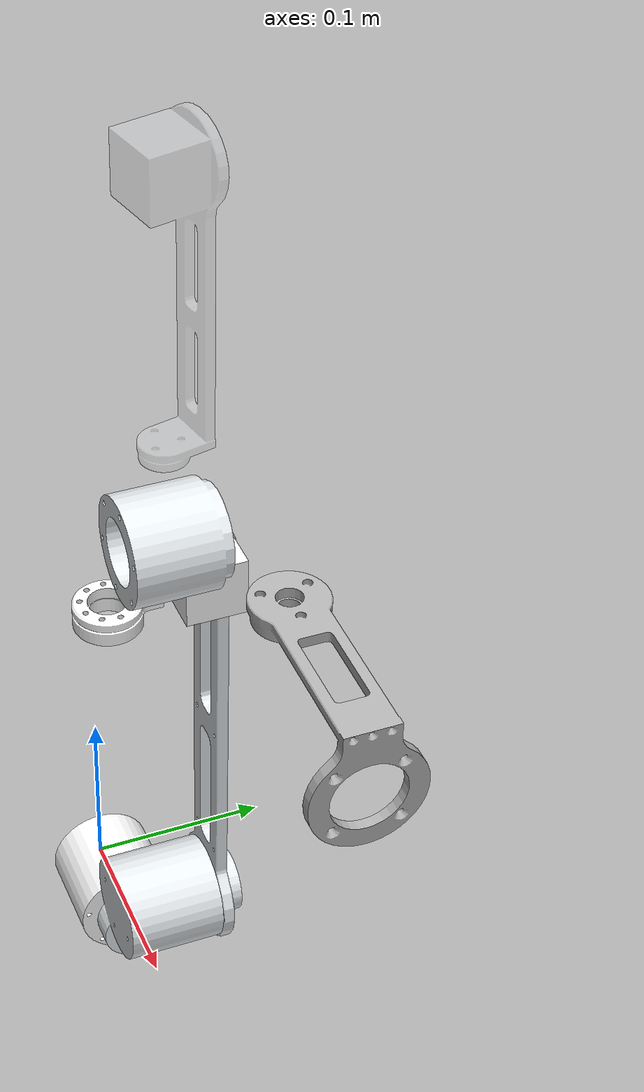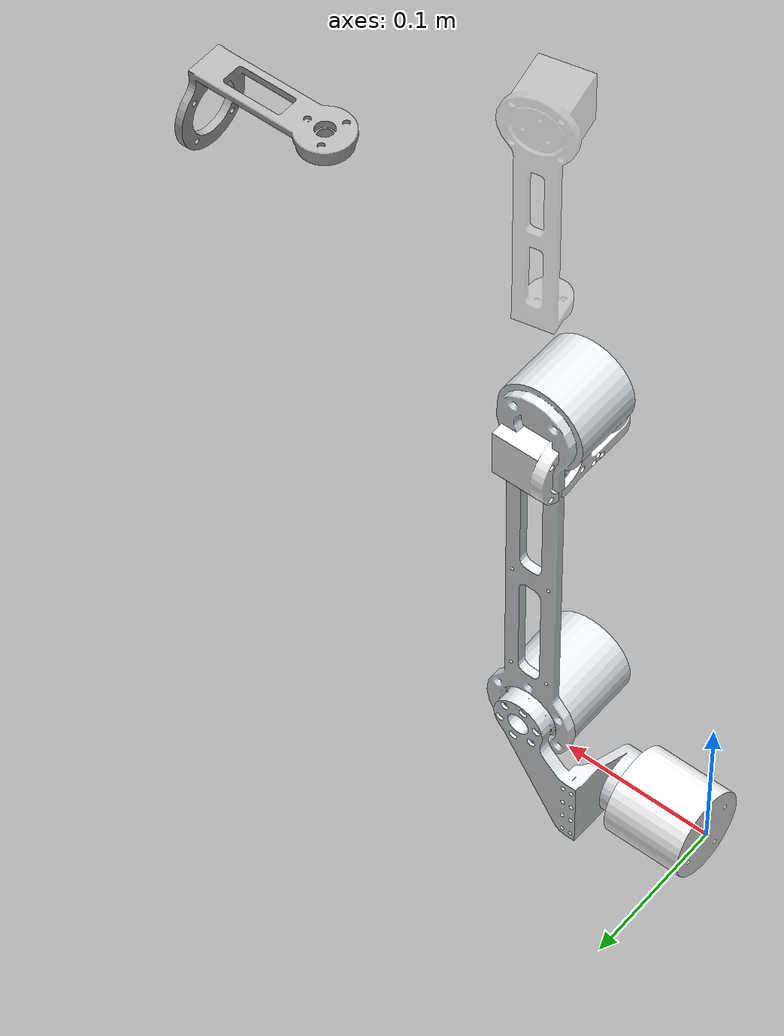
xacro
<?xml version="1.0" encoding="utf-8"?>
<robot xmlns:xacro="http://www.ros.org/wiki/xacro">

  <link
    name="base_link">
    <inertial>
      <origin
        xyz="0.025701 5.0471E-18 1.8724E-17"
        rpy="0 0 0" />
      <mass
        value="0.361" />
      <inertia
        ixx="0.00013128"
        ixy="-9.8948E-21"
        ixz="-1.4612E-21"
        iyy="0.0001261"
        iyz="8.4933E-21"
        izz="0.0001261" />
    </inertial>
    <visual>
      <origin
        xyz="0 0 0"
        rpy="0 0 0" />
      <geometry>
        <mesh
          filename="package://dummy_description/meshes/arm/A-L1-GAMMA/base_link.STL" />
      </geometry>
      <material
        name="">
        <color
          rgba="1 1 1 1" />
      </material>
    </visual>
    <collision>
      <origin
        xyz="0 0 0"
        rpy="0 0 0" />
      <geometry>
        <mesh
          filename="package://dummy_description/meshes/arm/A-L1-GAMMA/base_link.STL" />
      </geometry>
    </collision>
  </link>
  <link
    name="link1">
    <inertial>
      <origin
        xyz="0.03356 0.0084188 0.049178"
        rpy="0 0 0" />
      <mass
        value="0.471" />
      <inertia
        ixx="0.00017444"
        ixy="-1.9181E-06"
        ixz="-1.3887E-05"
        iyy="0.0001772"
        iyz="-3.8449E-06"
        izz="0.0001465" />
    </inertial>
    <visual>
      <origin
        xyz="0 0 0"
        rpy="0 0 0" />
      <geometry>
        <mesh
          filename="package://dummy_description/meshes/arm/A-L1-GAMMA/Link1.STL" />
      </geometry>
      <material
        name="">
        <color
          rgba="0.89804 0.91765 0.92941 1" />
      </material>
    </visual>
    <collision>
      <origin
        xyz="0 0 0"
        rpy="0 0 0" />
      <geometry>
        <mesh
          filename="package://dummy_description/meshes/arm/A-L1-GAMMA/Link1.STL" />
      </geometry>
    </collision>
  </link>
  <joint
    name="joint1"
    type="revolute">
    <origin
      xyz="0.0613 0 0"
      rpy="0 0 0" />
    <parent
      link="base_link" />
    <child
      link="link1" />
    <axis
      xyz="1 0 0" />
    <limit
      lower="-3.14"
      upper="3.14"
      effort="0"
      velocity="0" />
  </joint>
  <link
    name="link2">
    <inertial>
      <origin
        xyz="2.6368E-16 -0.012392 0.17249"
        rpy="0 0 0" />
      <mass
        value="0.429" />
      <inertia
        ixx="0.0010287"
        ixy="-1.3972E-20"
        ixz="3.8782E-19"
        iyy="0.0010584"
        iyz="-3.9081E-08"
        izz="5.6591E-05" />
    </inertial>
    <visual>
      <origin
        xyz="0 0 0"
        rpy="0 0 0" />
      <geometry>
        <mesh
          filename="package://dummy_description/meshes/arm/A-L1-GAMMA/Link2.STL" />
      </geometry>
      <material
        name="">
        <color
          rgba="0.89804 0.91765 0.92941 1" />
      </material>
    </visual>
    <collision>
      <origin
        xyz="0 0 0"
        rpy="0 0 0" />
      <geometry>
        <mesh
          filename="package://dummy_description/meshes/arm/A-L1-GAMMA/Link2.STL" />
      </geometry>
    </collision>
  </link>
  <joint
    name="joint2"
    type="revolute">
    <origin
      xyz="0.042986 0.03395 0.064067"
      rpy="0 0 0" />
    <parent
      link="link1" />
    <child
      link="link2" />
    <axis
      xyz="0 -1 0" />
    <limit
      lower="-3.14"
      upper="3.14"
      effort="0"
      velocity="0" />
  </joint>
  <link
    name="link3">
    <inertial>
      <origin
        xyz="0.00017294 0.021038 0.033489"
        rpy="0 0 0" />
      <mass
        value="0.238" />
      <inertia
        ixx="3.4086E-05"
        ixy="-2.0284E-07"
        ixz="-1.895E-06"
        iyy="2.6983E-05"
        iyz="-1.4595E-07"
        izz="2.098E-05" />
    </inertial>
    <visual>
      <origin
        xyz="0 0 0"
        rpy="0 0 0" />
      <geometry>
        <mesh
          filename="package://dummy_description/meshes/arm/A-L1-GAMMA/Link3.STL" />
      </geometry>
      <material
        name="">
        <color
          rgba="1 1 1 1" />
      </material>
    </visual>
    <collision>
      <origin
        xyz="0 0 0"
        rpy="0 0 0" />
      <geometry>
        <mesh
          filename="package://dummy_description/meshes/arm/A-L1-GAMMA/Link3.STL" />
      </geometry>
    </collision>
  </link>
  <joint
    name="joint3"
    type="revolute">
    <origin
      xyz="0 -0.057 0.24873"
      rpy="0 0 0" />
    <parent
      link="link2" />
    <child
      link="link3" />
    <axis
      xyz="0 -1 0" />
    <limit
      lower="-3.14"
      upper="3.14"
      effort="0"
      velocity="0" />
  </joint>
  <link
    name="link4">
    <inertial>
      <origin
        xyz="0.1005 2.5613E-05 0.0067766"
        rpy="0 0 0" />
      <mass
        value="0.252" />
      <inertia
        ixx="1.7227E-05"
        ixy="-4.213E-09"
        ixz="-3.0057E-06"
        iyy="6.0252E-05"
        iyz="-6.9996E-08"
        izz="6.852E-05" />
    </inertial>
    <visual>
      <origin
        xyz="0 0 0"
        rpy="0 0 0" />
      <geometry>
        <mesh
          filename="package://dummy_description/meshes/arm/A-L1-GAMMA/Link4.STL" />
      </geometry>
      <material
        name="">
        <color
          rgba="0.89804 0.91765 0.92941 0.25" />
      </material>
    </visual>
    <collision>
      <origin
        xyz="0 0 0"
        rpy="0 0 0" />
      <geometry>
        <mesh
          filename="package://dummy_description/meshes/arm/A-L1-GAMMA/Link4.STL" />
      </geometry>
    </collision>
  </link>
  <joint
    name="joint4"
    type="revolute">
    <origin
      xyz="0.015 0.025 0.063014"
      rpy="0 0 0" />
    <parent
      link="link3" />
    <child
      link="link4" />
    <axis
      xyz="1 0 0" />
      <limit
      lower="-3.14"
      upper="3.14"
      effort="0"
      velocity="0" />
  </joint>
  <link
    name="link5">
    <inertial>
      <origin
        xyz="0.051595 -1.6142E-06 -0.014791"
        rpy="0 0 0" />
      <mass
        value="0.238" />
      <inertia
        ixx="1.1912E-05"
        ixy="-1.0649E-09"
        ixz="6.8642E-09"
        iyy="2.7295E-05"
        iyz="-2.3545E-12"
        izz="2.7133E-05" />
    </inertial>
    <visual>
      <origin
        xyz="0 0 0"
        rpy="0 0 0" />
      <geometry>
        <mesh
          filename="package://dummy_description/meshes/arm/A-L1-GAMMA/Link5.STL" />
      </geometry>
      <material
        name="">
        <color
          rgba="0.69804 0.69804 0.69804 1" />
      </material>
    </visual>
    <collision>
      <origin
        xyz="0 0 0"
        rpy="0 0 0" />
      <geometry>
        <mesh
          filename="package://dummy_description/meshes/arm/A-L1-GAMMA/Link5.STL" />
      </geometry>
    </collision>
  </link>
  <joint
    name="joint5"
    type="revolute">
    <origin
      xyz="0.15 0 0.0335"
      rpy="0 0 0" />
    <parent
      link="link4" />
    <child
      link="link5" />
    <axis
      xyz="0 0 1" />
      <limit
      lower="-3.14"
      upper="3.14"
      effort="0"
      velocity="0" />
  </joint>
  <link name="virtual_effector"/>

  <joint
    name="joint6"
    type="revolute">
    <origin
      xyz="0.084 0 -0.035"
      rpy="0 0 0" />
    <parent
      link="link5" />
    <child
      link="virtual_effector" />
    <axis
      xyz="1 0 0" />
    <limit
      lower="-3.15"
      upper="3.15"
      effort="0"
      velocity="0" />
  </joint>
</robot>
